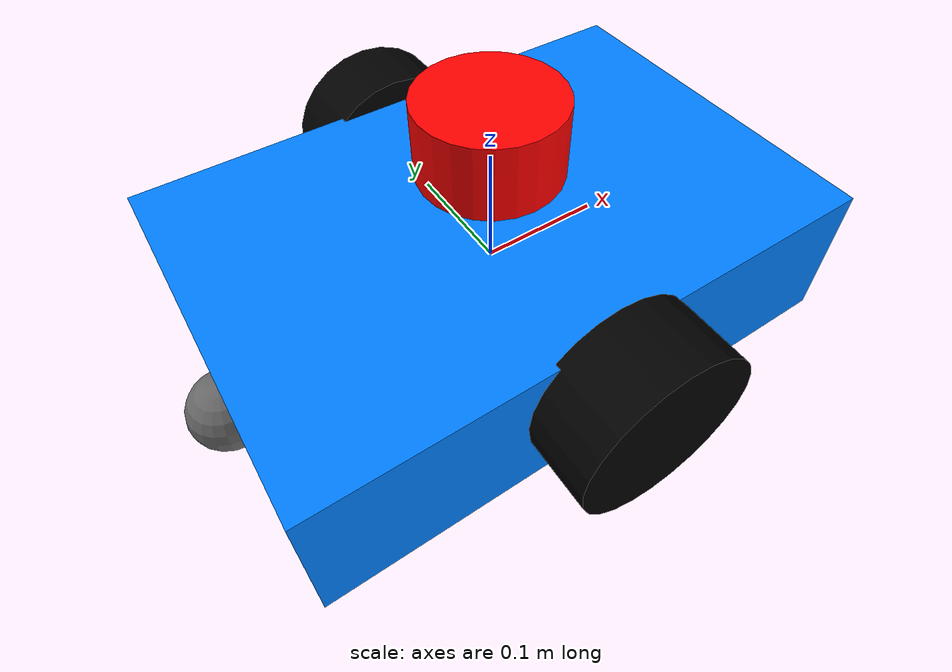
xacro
<?xml version="1.0"?>
<robot xmlns:xacro="http://www.ros.org/wiki/xacro" name="gpu_slam_bot">

  <!-- Robot parameters -->
  <xacro:property name="base_width" value="0.30"/>
  <xacro:property name="base_length" value="0.45"/>
  <xacro:property name="base_height" value="0.12"/>
  <xacro:property name="wheel_radius" value="0.07"/>
  <xacro:property name="wheel_width" value="0.06"/>
  <xacro:property name="wheel_separation" value="0.35"/>

  <!-- convenience materials -->
  <material name="base_blue"><color rgba="0 0.5 1 1"/></material>
  <material name="lidar_red"><color rgba="1 0 0 1"/></material>
  <material name="wheel_black"><color rgba="0 0 0 1"/></material>
  <material name="caster_grey"><color rgba="0.4 0.4 0.4 1"/></material>

  <!-- base -->
  <link name="base_link">
    <visual>
      <origin xyz="0 0 0" rpy="0 0 0"/>
      <geometry><box size="${base_length} ${base_width} ${base_height}"/></geometry>
      <material name="base_blue"/>
    </visual>
    <collision>
      <origin xyz="0 0 0" rpy="0 0 0"/>
      <geometry><box size="${base_length} ${base_width} ${base_height}"/></geometry>
    </collision>
    <inertial>
      <origin xyz="0 0 0" rpy="0 0 0"/>
      <mass value="3.0"/>
      <inertia ixx="${(1/12) * 3.0 * (base_width*base_width + base_height*base_height)}"
               iyy="${(1/12) * 3.0 * (base_length*base_length + base_height*base_height)}"
               izz="${(1/12) * 3.0 * (base_length*base_length + base_width*base_width)}"
               ixy="0" ixz="0" iyz="0"/>
    </inertial>
  </link>

  <!-- lidar -->
  <link name="lidar_link">
    <visual>
      <origin xyz="0 0 0.03" rpy="0 0 0"/>
      <geometry><cylinder length="0.06" radius="0.055"/></geometry>
      <material name="lidar_red"/>
    </visual>
    <collision>
      <origin xyz="0 0 0.03" rpy="0 0 0"/>
      <geometry><cylinder length="0.06" radius="0.055"/></geometry>
    </collision>
    <inertial>
      <origin xyz="0 0 0.03" rpy="0 0 0"/>
      <mass value="0.1"/>
      <inertia ixx="0.0003" iyy="0.0003" izz="0.0002" ixy="0" ixz="0" iyz="0"/>
    </inertial>
  </link>

  <joint name="lidar_joint" type="fixed">
    <parent link="base_link"/>
    <child link="lidar_link"/>
    <origin xyz="0 0 ${base_height/2 + 0.03}" rpy="0 0 0"/>
  </joint>

  <!-- wheels -->
  <link name="wheel_left">
    <visual>
      <origin xyz="0 0 0" rpy="1.5708 0 0"/>
      <geometry><cylinder length="${wheel_width}" radius="${wheel_radius}"/></geometry>
      <material name="wheel_black"/>
    </visual>
    <collision>
      <origin xyz="0 0 0" rpy="1.5708 0 0"/>
      <geometry><cylinder length="${wheel_width}" radius="${wheel_radius}"/></geometry>
    </collision>
    <inertial>
      <origin xyz="0 0 0" rpy="1.5708 0 0"/>
      <mass value="0.5"/>
      <inertia ixx="0.0013" iyy="0.0024" izz="0.0013" ixy="0" ixz="0" iyz="0"/>
    </inertial>
  </link>

  <link name="wheel_right">
    <visual>
      <origin xyz="0 0 0" rpy="1.5708 0 0"/>
      <geometry><cylinder length="${wheel_width}" radius="${wheel_radius}"/></geometry>
      <material name="wheel_black"/>
    </visual>
    <collision>
      <origin xyz="0 0 0" rpy="1.5708 0 0"/>
      <geometry><cylinder length="${wheel_width}" radius="${wheel_radius}"/></geometry>
    </collision>
    <inertial>
      <origin xyz="0 0 0" rpy="1.5708 0 0"/>
      <mass value="0.5"/>
      <inertia ixx="0.0013" iyy="0.0024" izz="0.0013" ixy="0" ixz="0" iyz="0"/>
    </inertial>
  </link>

  <!-- wheel joints -->
  <joint name="wheel_left_joint" type="continuous">
    <parent link="base_link"/>
    <child link="wheel_left"/>
    <origin xyz="0 ${wheel_separation/2} ${-base_height/2 + wheel_radius}" rpy="0 0 0"/>
    <axis xyz="0 1 0"/>
  </joint>

  <joint name="wheel_right_joint" type="continuous">
    <parent link="base_link"/>
    <child link="wheel_right"/>
    <origin xyz="0 ${-wheel_separation/2} ${-base_height/2 + wheel_radius}" rpy="0 0 0"/>
    <axis xyz="0 1 0"/>
  </joint>

  <!-- caster wheel -->
  <link name="caster_link">
    <visual>
      <origin xyz="0 0 0" rpy="0 0 0"/>
      <geometry><sphere radius="0.03"/></geometry>
      <material name="caster_grey"/>
    </visual>
    <collision>
      <origin xyz="0 0 0" rpy="0 0 0"/>
      <geometry><sphere radius="0.03"/></geometry>
    </collision>
    <inertial>
      <origin xyz="0 0 0" rpy="0 0 0"/>
      <mass value="0.1"/>
      <inertia ixx="1e-5" iyy="1e-5" izz="1e-5" ixy="0" ixz="0" iyz="0"/>
    </inertial>
  </link>

  <joint name="caster_joint" type="fixed">
    <parent link="base_link"/>
    <child link="caster_link"/>
    <origin xyz="-${base_length/2} 0 ${-base_height/2 + 0.03}" rpy="0 0 0"/>
  </joint>

  <!-- Gazebo plugins -->
  <gazebo>
    <plugin name="diff_drive" filename="libgazebo_ros_diff_drive.so">
      <ros>
        <namespace>/</namespace>
        <argument>cmd_vel:=cmd_vel</argument>
        <argument>odom:=odom</argument>
      </ros>
      <update_rate>50</update_rate>
      <left_joint>wheel_left_joint</left_joint>
      <right_joint>wheel_right_joint</right_joint>
      <wheel_separation>${wheel_separation}</wheel_separation>
      <wheel_diameter>${2*wheel_radius}</wheel_diameter>
      <publish_odom>true</publish_odom>
      <publish_wheel_tf>true</publish_wheel_tf>
      <publish_tf>true</publish_tf>
    </plugin>

    <plugin name="lidar_plugin" filename="libgazebo_ros_ray_sensor.so">
      <ros>
        <namespace>/</namespace>
        <argument>scan:=scan</argument>
      </ros>
      <update_rate>10</update_rate>
      <frame_name>lidar_link</frame_name>
    </plugin>
  </gazebo>

</robot>
